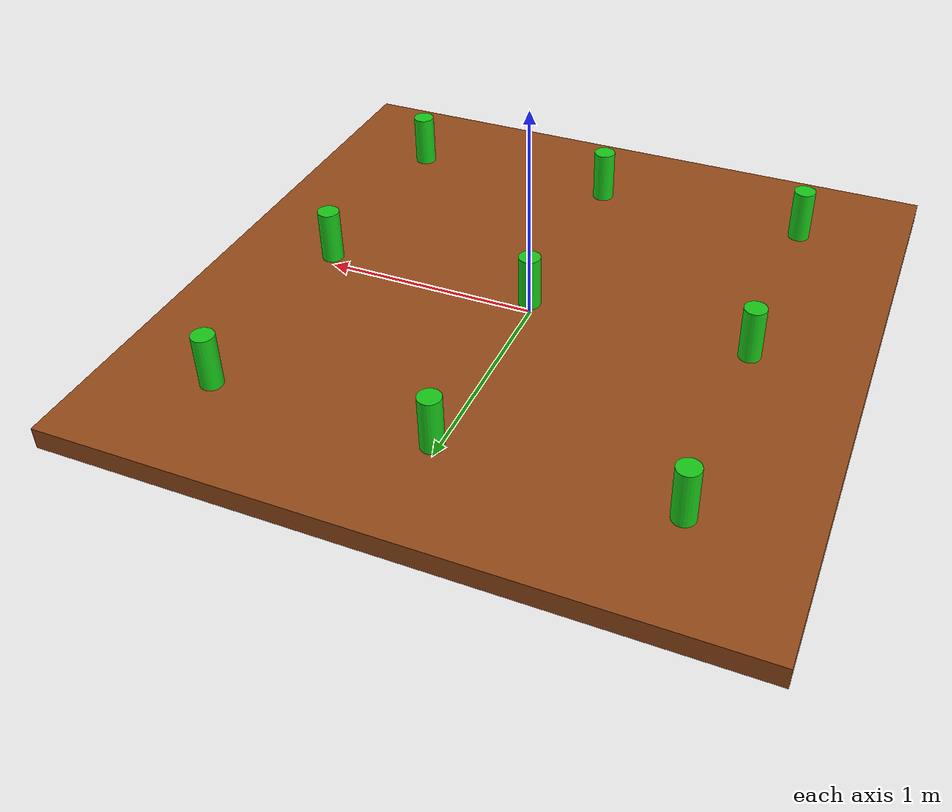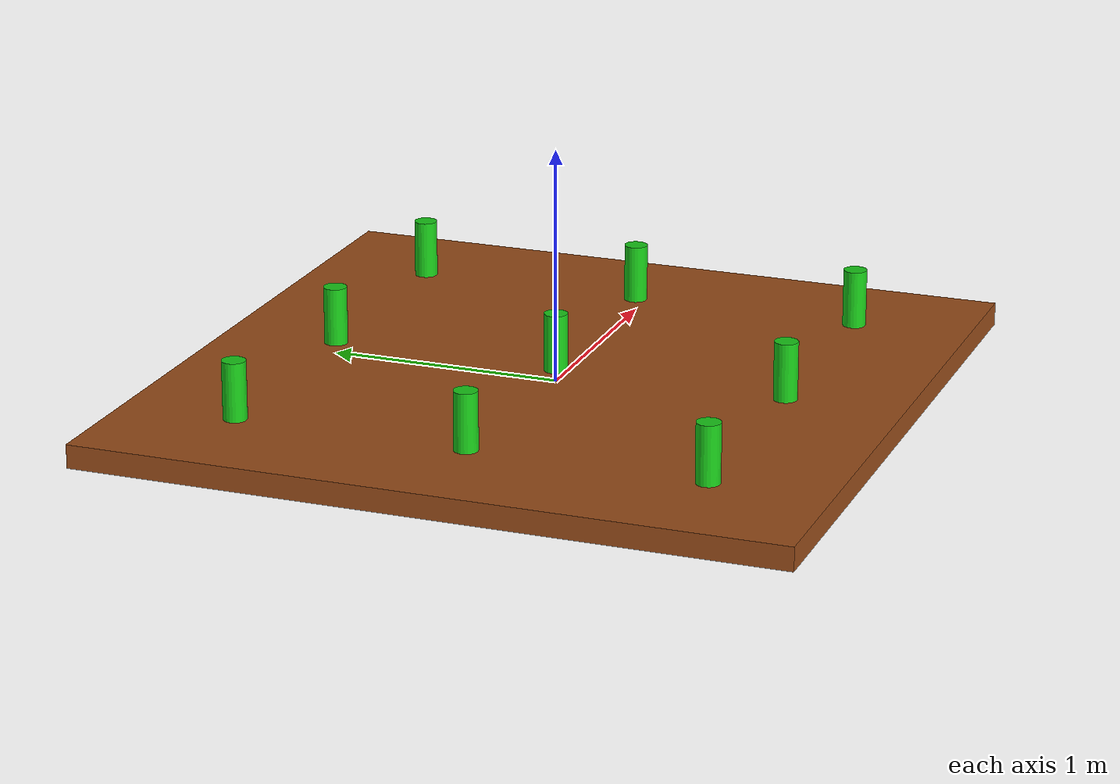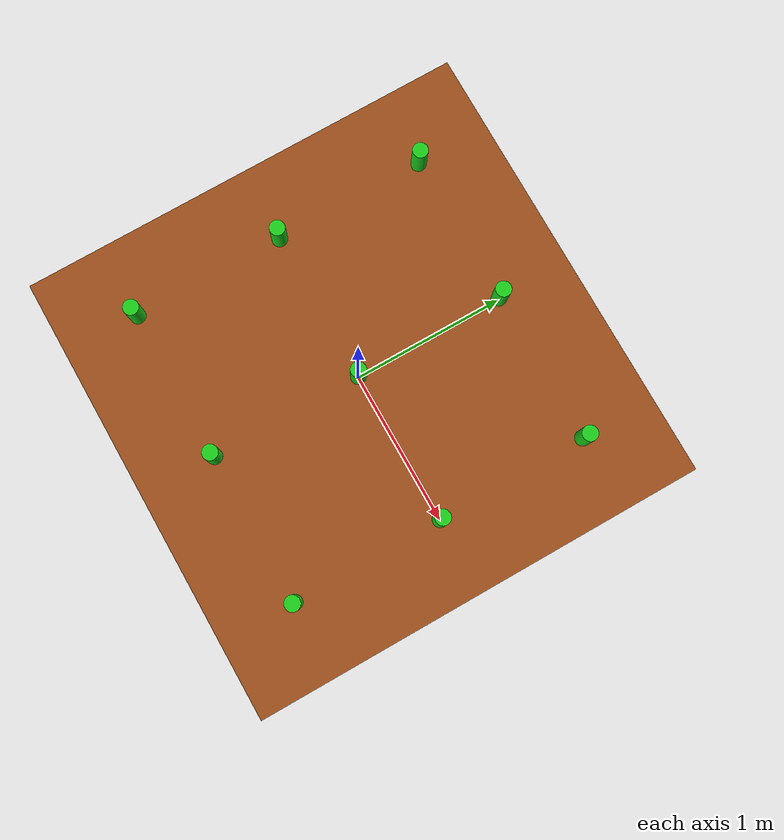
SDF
<?xml version="1.0"?>
<sdf version="1.8">
  <world name="crop_field_world">

    <!-- Define the sky and background color -->
    <sky>
      <lighting>
        <directional>
          <ambient>0.4 0.4 0.4 1.0</ambient>
          <diffuse>0.7 0.7 0.7 1.0</diffuse>
        </directional>
      </lighting>
    </sky>

    <!-- Define the floor (field) -->
    <model name="floor">
      <static>true</static>
      <link name="link">
        <collision name="collision">
          <geometry>
            <box>
              <size>3 3 0.1</size> <!-- Smaller 3m x 3m field -->
            </box>
          </geometry>
          <surface>
            <friction>
              <ode>
                <mu>0.9</mu>
                <mu2>0.9</mu2>
              </ode>
            </friction>
          </surface>
        </collision>
        <visual name="visual">
          <geometry>
            <box>
              <size>3 3 0.1</size> <!-- Smaller 3m x 3m field -->
            </box>
          </geometry>
          <material>
            <ambient>0.4 0.2 0.1 1</ambient> <!-- Brown color for the soil -->
            <diffuse>0.6 0.3 0.1 1</diffuse>
          </material>
        </visual>
      </link>
    </model>

    <!-- Add Crop Figures (plants) -->
    <!-- 10 crop rows placed in a 5x2 grid -->

    <model name="crop_row_1">
      <static>true</static>
      <link name="link">
        <collision name="collision">
          <geometry>
            <cylinder>
              <radius>0.05</radius> <!-- Smaller crop size -->
              <length>0.3</length> <!-- Height of the crop figure -->
            </cylinder>
          </geometry>
        </collision>

        <visual name="visual">
          <geometry>
            <cylinder>
              <radius>0.05</radius> <!-- Smaller crop size -->
              <length>0.3</length> <!-- Height of the crop figure -->
            </cylinder>
          </geometry>
          <material>
            <ambient>0.1 0.7 0.1 1</ambient> <!-- Green color for crops -->
            <diffuse>0.1 0.8 0.1 1</diffuse>
          </material>
        </visual>
      </link>
      <pose>-1 0 0.15 0 0 0</pose>
    </model>

    <model name="crop_row_2">
      <static>true</static>
      <link name="link">
        <collision name="collision">
          <geometry>
            <cylinder>
              <radius>0.05</radius>
              <length>0.3</length>
            </cylinder>
          </geometry>
        </collision>

        <visual name="visual">
          <geometry>
            <cylinder>
              <radius>0.05</radius>
              <length>0.3</length>
            </cylinder>
          </geometry>
          <material>
            <ambient>0.1 0.7 0.1 1</ambient>
            <diffuse>0.1 0.8 0.1 1</diffuse>
          </material>
        </visual>
      </link>
      <pose>-1 1 0.15 0 0 0</pose>
    </model>

    <model name="crop_row_3">
      <static>true</static>
      <link name="link">
        <collision name="collision">
          <geometry>
            <cylinder>
              <radius>0.05</radius>
              <length>0.3</length>
            </cylinder>
          </geometry>
        </collision>

        <visual name="visual">
          <geometry>
            <cylinder>
              <radius>0.05</radius>
              <length>0.3</length>
            </cylinder>
          </geometry>
          <material>
            <ambient>0.1 0.7 0.1 1</ambient>
            <diffuse>0.1 0.8 0.1 1</diffuse>
          </material>
        </visual>
      </link>
      <pose>1 1 0.15 0 0 0</pose>
    </model>

    <model name="crop_row_4">
      <static>true</static>
      <link name="link">
        <collision name="collision">
          <geometry>
            <cylinder>
              <radius>0.05</radius>
              <length>0.3</length>
            </cylinder>
          </geometry>
        </collision>

        <visual name="visual">
          <geometry>
            <cylinder>
              <radius>0.05</radius>
              <length>0.3</length>
            </cylinder>
          </geometry>
          <material>
            <ambient>0.1 0.7 0.1 1</ambient>
            <diffuse>0.1 0.8 0.1 1</diffuse>
          </material>
        </visual>
      </link>
      <pose>1 0 0.15 0 0 0</pose>
    </model>

    <model name="crop_row_5">
      <static>true</static>
      <link name="link">
        <collision name="collision">
          <geometry>
            <cylinder>
              <radius>0.05</radius>
              <length>0.3</length>
            </cylinder>
          </geometry>
        </collision>

        <visual name="visual">
          <geometry>
            <cylinder>
              <radius>0.05</radius>
              <length>0.3</length>
            </cylinder>
          </geometry>
          <material>
            <ambient>0.1 0.7 0.1 1</ambient>
            <diffuse>0.1 0.8 0.1 1</diffuse>
          </material>
        </visual>
      </link>
      <pose>-1 -1 0.15 0 0 0</pose>
    </model>

    <model name="crop_row_6">
      <static>true</static>
      <link name="link">
        <collision name="collision">
          <geometry>
            <cylinder>
              <radius>0.05</radius>
              <length>0.3</length>
            </cylinder>
          </geometry>
        </collision>

        <visual name="visual">
          <geometry>
            <cylinder>
              <radius>0.05</radius>
              <length>0.3</length>
            </cylinder>
          </geometry>
          <material>
            <ambient>0.1 0.7 0.1 1</ambient>
            <diffuse>0.1 0.8 0.1 1</diffuse>
          </material>
        </visual>
      </link>
      <pose>1 -1 0.15 0 0 0</pose>
    </model>

    <model name="crop_row_7">
      <static>true</static>
      <link name="link">
        <collision name="collision">
          <geometry>
            <cylinder>
              <radius>0.05</radius>
              <length>0.3</length>
            </cylinder>
          </geometry>
        </collision>

        <visual name="visual">
          <geometry>
            <cylinder>
              <radius>0.05</radius>
              <length>0.3</length>
            </cylinder>
          </geometry>
          <material>
            <ambient>0.1 0.7 0.1 1</ambient>
            <diffuse>0.1 0.8 0.1 1</diffuse>
          </material>
        </visual>
      </link>
      <pose>0 -1 0.15 0 0 0</pose>
    </model>

    <model name="crop_row_8">
      <static>true</static>
      <link name="link">
        <collision name="collision">
          <geometry>
            <cylinder>
              <radius>0.05</radius>
              <length>0.3</length>
            </cylinder>
          </geometry>
        </collision>

        <visual name="visual">
          <geometry>
            <cylinder>
              <radius>0.05</radius>
              <length>0.3</length>
            </cylinder>
          </geometry>
          <material>
            <ambient>0.1 0.7 0.1 1</ambient>
            <diffuse>0.1 0.8 0.1 1</diffuse>
          </material>
        </visual>
      </link>
      <pose>0 0 0.15 0 0 0</pose>
    </model>

    <model name="crop_row_9">
      <static>true</static>
      <link name="link">
        <collision name="collision">
          <geometry>
            <cylinder>
              <radius>0.05</radius>
              <length>0.3</length>
            </cylinder>
          </geometry>
        </collision>

        <visual name="visual">
          <geometry>
            <cylinder>
              <radius>0.05</radius>
              <length>0.3</length>
            </cylinder>
          </geometry>
          <material>
            <ambient>0.1 0.7 0.1 1</ambient>
            <diffuse>0.1 0.8 0.1 1</diffuse>
          </material>
        </visual>
      </link>
      <pose>0 -1 0.15 0 0 0</pose>
    </model>

    <model name="crop_row_10">
      <static>true</static>
      <link name="link">
        <collision name="collision">
          <geometry>
            <cylinder>
              <radius>0.05</radius>
              <length>0.3</length>
            </cylinder>
          </geometry>
        </collision>

        <visual name="visual">
          <geometry>
            <cylinder>
              <radius>0.05</radius>
              <length>0.3</length>
            </cylinder>
          </geometry>
          <material>
            <ambient>0.1 0.7 0.1 1</ambient>
            <diffuse>0.1 0.8 0.1 1</diffuse>
          </material>
        </visual>
      </link>
      <pose>0 1 0.15 0 0 0</pose>
    </model>

  </world>
</sdf>
